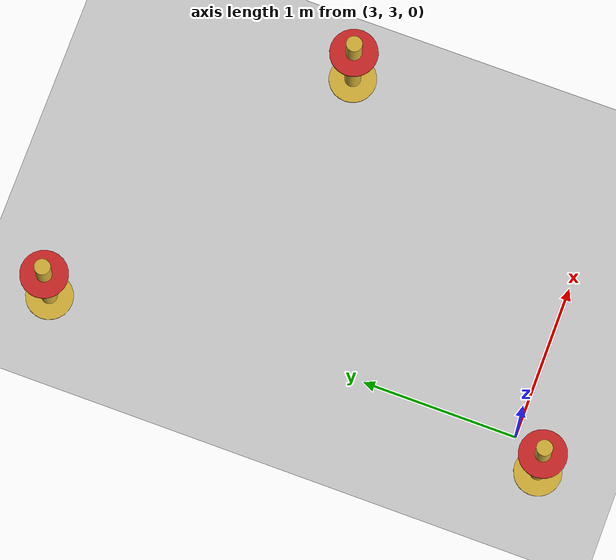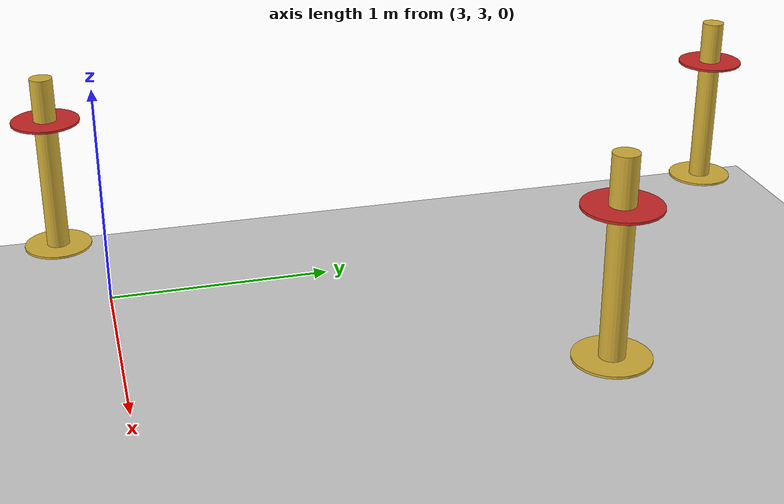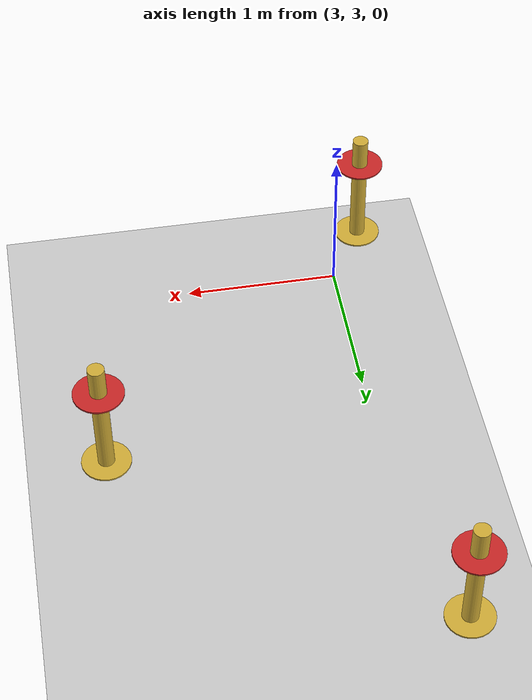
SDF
<sdf version="1.7">
 <world name="default">
  <model name="ground_plane">
   <static>1</static>
   <link name="link">
    <collision name="collision">
     <geometry><plane><normal>0 0 1</normal><size>100 100</size></plane></geometry>
     <surface>
      <contact><collide_bitmask>65535</collide_bitmask></contact>
      <friction><ode><mu>100</mu><mu2>50</mu2></ode></friction>
     </surface>
    </collision>
    <visual name="visual">
     <cast_shadows>0</cast_shadows>
     <geometry><plane><normal>0 0 1</normal><size>100 100</size></plane></geometry>
     <material>
      <script><uri>file://media/materials/scripts/gazebo.material</uri><name>Gazebo/Grey</name></script>
     </material>
    </visual>
   </link>
  </model>
  <model name="pole_tier_1_0">
   <link name="link">
    <inertial>
     <mass>1</mass>
     <inertia><ixx>0.145833</ixx><ixy>0</ixy><ixz>0</ixz><iyy>0.145833</iyy><iyz>0</iyz><izz>0.125</izz></inertia>
    </inertial>
    <pose>0 0 0.4 0 -0 0</pose>
    <visual name="visual">
     <geometry><cylinder><radius>0.05</radius><length>0.8</length></cylinder></geometry>
     <material>
      <script><name>Gazebo/Gray</name><uri>file://media/materials/scripts/gazebo.material</uri></script>
      <shader type="pixel"><normal_map>__default__</normal_map></shader>
      <ambient>0.83 0.686 0.216 1</ambient>
      <diffuse>0.83 0.686 0.216 1</diffuse>
      <specular>0.83 0.686 0.216 1</specular>
      <emissive>0 0 0 1</emissive>
     </material>
    </visual>
    <collision name="collision">
     <geometry><cylinder><radius>0.05</radius><length>0.8</length></cylinder></geometry>
     <surface>
      <friction>
       <ode><mu>1</mu><mu2>1</mu2><fdir1>0 0 0</fdir1><slip1>0</slip1><slip2>0</slip2></ode>
       <torsional>
        <coefficient>1</coefficient>
        <patch_radius>0</patch_radius>
        <surface_radius>0</surface_radius>
        <use_patch_radius>1</use_patch_radius>
        <ode><slip>0</slip></ode>
       </torsional>
      </friction>
      <bounce><restitution_coefficient>0</restitution_coefficient><threshold>1e+06</threshold></bounce>
      <contact>
       <collide_without_contact>0</collide_without_contact>
       <collide_without_contact_bitmask>1</collide_without_contact_bitmask>
       <collide_bitmask>1</collide_bitmask>
       <ode>
        <soft_cfm>0</soft_cfm>
        <soft_erp>0.2</soft_erp>
        <kp>1e+13</kp>
        <kd>1</kd>
        <max_vel>0.01</max_vel>
        <min_depth>0</min_depth>
       </ode>
       <bullet>
        <split_impulse>1</split_impulse>
        <split_impulse_penetration_threshold>-0.01</split_impulse_penetration_threshold>
        <soft_cfm>0</soft_cfm>
        <soft_erp>0.2</soft_erp>
        <kp>1e+13</kp>
        <kd>1</kd>
       </bullet>
      </contact>
     </surface>
    </collision>
   </link>
   <link name="link_clone">
    <inertial>
     <mass>1</mass>
     <inertia><ixx>0.145833</ixx><ixy>0</ixy><ixz>0</ixz><iyy>0.145833</iyy><iyz>0</iyz><izz>0.125</izz></inertia>
    </inertial>
    <visual name="visual">
     <geometry><cylinder><radius>0.15</radius><length>0.01</length></cylinder></geometry>
     <material>
      <script><name>Gazebo/Grey</name><uri>file://media/materials/scripts/gazebo.material</uri></script>
      <shader type="pixel"><normal_map>__default__</normal_map></shader>
      <ambient>0.83 0.686 0.216 1</ambient>
      <diffuse>0.7 0.7 0.7 1</diffuse>
      <specular>0.01 0.01 0.01 1</specular>
      <emissive>0 0 0 1</emissive>
     </material>
    </visual>
    <collision name="collision">
     <geometry><cylinder><radius>0.15</radius><length>0.01</length></cylinder></geometry>
     <surface>
      <friction>
       <ode><mu>1</mu><mu2>1</mu2><fdir1>0 0 0</fdir1><slip1>0</slip1><slip2>0</slip2></ode>
       <torsional>
        <coefficient>1</coefficient>
        <patch_radius>0</patch_radius>
        <surface_radius>0</surface_radius>
        <use_patch_radius>1</use_patch_radius>
        <ode><slip>0</slip></ode>
       </torsional>
      </friction>
      <bounce><restitution_coefficient>0</restitution_coefficient><threshold>1e+06</threshold></bounce>
      <contact>
       <collide_without_contact>0</collide_without_contact>
       <collide_without_contact_bitmask>1</collide_without_contact_bitmask>
       <collide_bitmask>1</collide_bitmask>
       <ode>
        <soft_cfm>0</soft_cfm>
        <soft_erp>0.2</soft_erp>
        <kp>1e+13</kp>
        <kd>1</kd>
        <max_vel>0.01</max_vel>
        <min_depth>0</min_depth>
       </ode>
       <bullet>
        <split_impulse>1</split_impulse>
        <split_impulse_penetration_threshold>-0.01</split_impulse_penetration_threshold>
        <soft_cfm>0</soft_cfm>
        <soft_erp>0.2</soft_erp>
        <kp>1e+13</kp>
        <kd>1</kd>
       </bullet>
      </contact>
     </surface>
    </collision>
   </link>
   <link name="link_clone_clone">
    <inertial>
     <mass>1</mass>
     <inertia><ixx>0.145833</ixx><ixy>0</ixy><ixz>0</ixz><iyy>0.145833</iyy><iyz>0</iyz><izz>0.125</izz></inertia>
    </inertial>
    <pose>0 0 0.6 0 -0 0</pose>
    <visual name="visual">
     <geometry><cylinder><radius>0.15</radius><length>0.01</length></cylinder></geometry>
     <material>
      <script><name>Gazebo/Red</name><uri>file://media/materials/scripts/gazebo.material</uri></script>
      <shader type="pixel"><normal_map>__default__</normal_map></shader>
      <ambient>0.83 0.686 0.216 1</ambient>
      <diffuse>0.7 0.7 0.7 1</diffuse>
      <specular>0.01 0.01 0.01 1</specular>
      <emissive>0 0 0 1</emissive>
     </material>
    </visual>
    <collision name="collision">
     <geometry><cylinder><radius>0.15</radius><length>0.01</length></cylinder></geometry>
     <surface>
      <friction>
       <ode><mu>1</mu><mu2>1</mu2><fdir1>0 0 0</fdir1><slip1>0</slip1><slip2>0</slip2></ode>
       <torsional>
        <coefficient>1</coefficient>
        <patch_radius>0</patch_radius>
        <surface_radius>0</surface_radius>
        <use_patch_radius>1</use_patch_radius>
        <ode><slip>0</slip></ode>
       </torsional>
      </friction>
      <bounce><restitution_coefficient>0</restitution_coefficient><threshold>1e+06</threshold></bounce>
      <contact>
       <collide_without_contact>0</collide_without_contact>
       <collide_without_contact_bitmask>1</collide_without_contact_bitmask>
       <collide_bitmask>1</collide_bitmask>
       <ode>
        <soft_cfm>0</soft_cfm>
        <soft_erp>0.2</soft_erp>
        <kp>1e+13</kp>
        <kd>1</kd>
        <max_vel>0.01</max_vel>
        <min_depth>0</min_depth>
       </ode>
       <bullet>
        <split_impulse>1</split_impulse>
        <split_impulse_penetration_threshold>-0.01</split_impulse_penetration_threshold>
        <soft_cfm>0</soft_cfm>
        <soft_erp>0.2</soft_erp>
        <kp>1e+13</kp>
        <kd>1</kd>
       </bullet>
      </contact>
     </surface>
    </collision>
   </link>
   <joint name="link_JOINT_0" type="fixed">
    <parent>link</parent>
    <child>link_clone</child>
    <physics>
     <ode><limit><cfm>0</cfm><erp>0.2</erp></limit><suspension><cfm>0</cfm><erp>0.2</erp></suspension></ode>
    </physics>
   </joint>
   <joint name="link_JOINT_1" type="fixed">
    <parent>link</parent>
    <child>link_clone_clone</child>
    <physics>
     <ode><limit><cfm>0</cfm><erp>0.2</erp></limit><suspension><cfm>0</cfm><erp>0.2</erp></suspension></ode>
    </physics>
   </joint>
   <static>0</static>
   <pose>2.80206 2.79539 0.205005 1.8e-05 -2.7e-05 -0.021574</pose>
  </model>
  <model name="pole_tier_1_1">
   <link name="link">
    <inertial>
     <mass>1</mass>
     <inertia><ixx>0.145833</ixx><ixy>0</ixy><ixz>0</ixz><iyy>0.145833</iyy><iyz>0</iyz><izz>0.125</izz></inertia>
    </inertial>
    <pose>0 0 0.4 0 -0 0</pose>
    <visual name="visual">
     <geometry><cylinder><radius>0.05</radius><length>0.8</length></cylinder></geometry>
     <material>
      <script><name>Gazebo/Gray</name><uri>file://media/materials/scripts/gazebo.material</uri></script>
      <shader type="pixel"><normal_map>__default__</normal_map></shader>
      <ambient>0.83 0.686 0.216 1</ambient>
      <diffuse>0.83 0.686 0.216 1</diffuse>
      <specular>0.83 0.686 0.216 1</specular>
      <emissive>0 0 0 1</emissive>
     </material>
    </visual>
    <collision name="collision">
     <geometry><cylinder><radius>0.05</radius><length>0.8</length></cylinder></geometry>
     <surface>
      <friction>
       <ode><mu>1</mu><mu2>1</mu2><fdir1>0 0 0</fdir1><slip1>0</slip1><slip2>0</slip2></ode>
       <torsional>
        <coefficient>1</coefficient>
        <patch_radius>0</patch_radius>
        <surface_radius>0</surface_radius>
        <use_patch_radius>1</use_patch_radius>
        <ode><slip>0</slip></ode>
       </torsional>
      </friction>
      <bounce><restitution_coefficient>0</restitution_coefficient><threshold>1e+06</threshold></bounce>
      <contact>
       <collide_without_contact>0</collide_without_contact>
       <collide_without_contact_bitmask>1</collide_without_contact_bitmask>
       <collide_bitmask>1</collide_bitmask>
       <ode>
        <soft_cfm>0</soft_cfm>
        <soft_erp>0.2</soft_erp>
        <kp>1e+13</kp>
        <kd>1</kd>
        <max_vel>0.01</max_vel>
        <min_depth>0</min_depth>
       </ode>
       <bullet>
        <split_impulse>1</split_impulse>
        <split_impulse_penetration_threshold>-0.01</split_impulse_penetration_threshold>
        <soft_cfm>0</soft_cfm>
        <soft_erp>0.2</soft_erp>
        <kp>1e+13</kp>
        <kd>1</kd>
       </bullet>
      </contact>
     </surface>
    </collision>
   </link>
   <link name="link_clone">
    <inertial>
     <mass>1</mass>
     <inertia><ixx>0.145833</ixx><ixy>0</ixy><ixz>0</ixz><iyy>0.145833</iyy><iyz>0</iyz><izz>0.125</izz></inertia>
    </inertial>
    <visual name="visual">
     <geometry><cylinder><radius>0.15</radius><length>0.01</length></cylinder></geometry>
     <material>
      <script><name>Gazebo/Grey</name><uri>file://media/materials/scripts/gazebo.material</uri></script>
      <shader type="pixel"><normal_map>__default__</normal_map></shader>
      <ambient>0.83 0.686 0.216 1</ambient>
      <diffuse>0.7 0.7 0.7 1</diffuse>
      <specular>0.01 0.01 0.01 1</specular>
      <emissive>0 0 0 1</emissive>
     </material>
    </visual>
    <collision name="collision">
     <geometry><cylinder><radius>0.15</radius><length>0.01</length></cylinder></geometry>
     <surface>
      <friction>
       <ode><mu>1</mu><mu2>1</mu2><fdir1>0 0 0</fdir1><slip1>0</slip1><slip2>0</slip2></ode>
       <torsional>
        <coefficient>1</coefficient>
        <patch_radius>0</patch_radius>
        <surface_radius>0</surface_radius>
        <use_patch_radius>1</use_patch_radius>
        <ode><slip>0</slip></ode>
       </torsional>
      </friction>
      <bounce><restitution_coefficient>0</restitution_coefficient><threshold>1e+06</threshold></bounce>
      <contact>
       <collide_without_contact>0</collide_without_contact>
       <collide_without_contact_bitmask>1</collide_without_contact_bitmask>
       <collide_bitmask>1</collide_bitmask>
       <ode>
        <soft_cfm>0</soft_cfm>
        <soft_erp>0.2</soft_erp>
        <kp>1e+13</kp>
        <kd>1</kd>
        <max_vel>0.01</max_vel>
        <min_depth>0</min_depth>
       </ode>
       <bullet>
        <split_impulse>1</split_impulse>
        <split_impulse_penetration_threshold>-0.01</split_impulse_penetration_threshold>
        <soft_cfm>0</soft_cfm>
        <soft_erp>0.2</soft_erp>
        <kp>1e+13</kp>
        <kd>1</kd>
       </bullet>
      </contact>
     </surface>
    </collision>
   </link>
   <link name="link_clone_clone">
    <inertial>
     <mass>1</mass>
     <inertia><ixx>0.145833</ixx><ixy>0</ixy><ixz>0</ixz><iyy>0.145833</iyy><iyz>0</iyz><izz>0.125</izz></inertia>
    </inertial>
    <pose>0 0 0.6 0 -0 0</pose>
    <visual name="visual">
     <geometry><cylinder><radius>0.15</radius><length>0.01</length></cylinder></geometry>
     <material>
      <script><name>Gazebo/Red</name><uri>file://media/materials/scripts/gazebo.material</uri></script>
      <shader type="pixel"><normal_map>__default__</normal_map></shader>
      <ambient>0.83 0.686 0.216 1</ambient>
      <diffuse>0.7 0.7 0.7 1</diffuse>
      <specular>0.01 0.01 0.01 1</specular>
      <emissive>0 0 0 1</emissive>
     </material>
    </visual>
    <collision name="collision">
     <geometry><cylinder><radius>0.15</radius><length>0.01</length></cylinder></geometry>
     <surface>
      <friction>
       <ode><mu>1</mu><mu2>1</mu2><fdir1>0 0 0</fdir1><slip1>0</slip1><slip2>0</slip2></ode>
       <torsional>
        <coefficient>1</coefficient>
        <patch_radius>0</patch_radius>
        <surface_radius>0</surface_radius>
        <use_patch_radius>1</use_patch_radius>
        <ode><slip>0</slip></ode>
       </torsional>
      </friction>
      <bounce><restitution_coefficient>0</restitution_coefficient><threshold>1e+06</threshold></bounce>
      <contact>
       <collide_without_contact>0</collide_without_contact>
       <collide_without_contact_bitmask>1</collide_without_contact_bitmask>
       <collide_bitmask>1</collide_bitmask>
       <ode>
        <soft_cfm>0</soft_cfm>
        <soft_erp>0.2</soft_erp>
        <kp>1e+13</kp>
        <kd>1</kd>
        <max_vel>0.01</max_vel>
        <min_depth>0</min_depth>
       </ode>
       <bullet>
        <split_impulse>1</split_impulse>
        <split_impulse_penetration_threshold>-0.01</split_impulse_penetration_threshold>
        <soft_cfm>0</soft_cfm>
        <soft_erp>0.2</soft_erp>
        <kp>1e+13</kp>
        <kd>1</kd>
       </bullet>
      </contact>
     </surface>
    </collision>
   </link>
   <joint name="link_JOINT_0" type="fixed">
    <parent>link</parent>
    <child>link_clone</child>
    <physics>
     <ode><limit><cfm>0</cfm><erp>0.2</erp></limit><suspension><cfm>0</cfm><erp>0.2</erp></suspension></ode>
    </physics>
   </joint>
   <joint name="link_JOINT_1" type="fixed">
    <parent>link</parent>
    <child>link_clone_clone</child>
    <physics>
     <ode><limit><cfm>0</cfm><erp>0.2</erp></limit><suspension><cfm>0</cfm><erp>0.2</erp></suspension></ode>
    </physics>
   </joint>
   <static>0</static>
   <pose>2.80091 5.99741 0.205006 1.7e-05 -3.6e-05 -0.008457</pose>
  </model>
  <model name="pole_tier_1_8">
   <link name="link">
    <inertial>
     <mass>1</mass>
     <inertia><ixx>0.145833</ixx><ixy>0</ixy><ixz>0</ixz><iyy>0.145833</iyy><iyz>0</iyz><izz>0.125</izz></inertia>
    </inertial>
    <pose>0 0 0.4 0 -0 0</pose>
    <visual name="visual">
     <geometry><cylinder><radius>0.05</radius><length>0.8</length></cylinder></geometry>
     <material>
      <script><name>Gazebo/Gray</name><uri>file://media/materials/scripts/gazebo.material</uri></script>
      <shader type="pixel"><normal_map>__default__</normal_map></shader>
      <ambient>0.83 0.686 0.216 1</ambient>
      <diffuse>0.83 0.686 0.216 1</diffuse>
      <specular>0.83 0.686 0.216 1</specular>
      <emissive>0 0 0 1</emissive>
     </material>
    </visual>
    <collision name="collision">
     <geometry><cylinder><radius>0.05</radius><length>0.8</length></cylinder></geometry>
     <surface>
      <friction>
       <ode><mu>1</mu><mu2>1</mu2><fdir1>0 0 0</fdir1><slip1>0</slip1><slip2>0</slip2></ode>
       <torsional>
        <coefficient>1</coefficient>
        <patch_radius>0</patch_radius>
        <surface_radius>0</surface_radius>
        <use_patch_radius>1</use_patch_radius>
        <ode><slip>0</slip></ode>
       </torsional>
      </friction>
      <bounce><restitution_coefficient>0</restitution_coefficient><threshold>1e+06</threshold></bounce>
      <contact>
       <collide_without_contact>0</collide_without_contact>
       <collide_without_contact_bitmask>1</collide_without_contact_bitmask>
       <collide_bitmask>1</collide_bitmask>
       <ode>
        <soft_cfm>0</soft_cfm>
        <soft_erp>0.2</soft_erp>
        <kp>1e+13</kp>
        <kd>1</kd>
        <max_vel>0.01</max_vel>
        <min_depth>0</min_depth>
       </ode>
       <bullet>
        <split_impulse>1</split_impulse>
        <split_impulse_penetration_threshold>-0.01</split_impulse_penetration_threshold>
        <soft_cfm>0</soft_cfm>
        <soft_erp>0.2</soft_erp>
        <kp>1e+13</kp>
        <kd>1</kd>
       </bullet>
      </contact>
     </surface>
    </collision>
   </link>
   <link name="link_clone">
    <inertial>
     <mass>1</mass>
     <inertia><ixx>0.145833</ixx><ixy>0</ixy><ixz>0</ixz><iyy>0.145833</iyy><iyz>0</iyz><izz>0.125</izz></inertia>
    </inertial>
    <visual name="visual">
     <geometry><cylinder><radius>0.15</radius><length>0.01</length></cylinder></geometry>
     <material>
      <script><name>Gazebo/Grey</name><uri>file://media/materials/scripts/gazebo.material</uri></script>
      <shader type="pixel"><normal_map>__default__</normal_map></shader>
      <ambient>0.83 0.686 0.216 1</ambient>
      <diffuse>0.7 0.7 0.7 1</diffuse>
      <specular>0.01 0.01 0.01 1</specular>
      <emissive>0 0 0 1</emissive>
     </material>
    </visual>
    <collision name="collision">
     <geometry><cylinder><radius>0.15</radius><length>0.01</length></cylinder></geometry>
     <surface>
      <friction>
       <ode><mu>1</mu><mu2>1</mu2><fdir1>0 0 0</fdir1><slip1>0</slip1><slip2>0</slip2></ode>
       <torsional>
        <coefficient>1</coefficient>
        <patch_radius>0</patch_radius>
        <surface_radius>0</surface_radius>
        <use_patch_radius>1</use_patch_radius>
        <ode><slip>0</slip></ode>
       </torsional>
      </friction>
      <bounce><restitution_coefficient>0</restitution_coefficient><threshold>1e+06</threshold></bounce>
      <contact>
       <collide_without_contact>0</collide_without_contact>
       <collide_without_contact_bitmask>1</collide_without_contact_bitmask>
       <collide_bitmask>1</collide_bitmask>
       <ode>
        <soft_cfm>0</soft_cfm>
        <soft_erp>0.2</soft_erp>
        <kp>1e+13</kp>
        <kd>1</kd>
        <max_vel>0.01</max_vel>
        <min_depth>0</min_depth>
       </ode>
       <bullet>
        <split_impulse>1</split_impulse>
        <split_impulse_penetration_threshold>-0.01</split_impulse_penetration_threshold>
        <soft_cfm>0</soft_cfm>
        <soft_erp>0.2</soft_erp>
        <kp>1e+13</kp>
        <kd>1</kd>
       </bullet>
      </contact>
     </surface>
    </collision>
   </link>
   <link name="link_clone_clone">
    <inertial>
     <mass>1</mass>
     <inertia><ixx>0.145833</ixx><ixy>0</ixy><ixz>0</ixz><iyy>0.145833</iyy><iyz>0</iyz><izz>0.125</izz></inertia>
    </inertial>
    <pose>0 0 0.6 0 -0 0</pose>
    <visual name="visual">
     <geometry><cylinder><radius>0.15</radius><length>0.01</length></cylinder></geometry>
     <material>
      <script><name>Gazebo/Red</name><uri>file://media/materials/scripts/gazebo.material</uri></script>
      <shader type="pixel"><normal_map>__default__</normal_map></shader>
      <ambient>0.83 0.686 0.216 1</ambient>
      <diffuse>0.7 0.7 0.7 1</diffuse>
      <specular>0.01 0.01 0.01 1</specular>
      <emissive>0 0 0 1</emissive>
     </material>
    </visual>
    <collision name="collision">
     <geometry><cylinder><radius>0.15</radius><length>0.01</length></cylinder></geometry>
     <surface>
      <friction>
       <ode><mu>1</mu><mu2>1</mu2><fdir1>0 0 0</fdir1><slip1>0</slip1><slip2>0</slip2></ode>
       <torsional>
        <coefficient>1</coefficient>
        <patch_radius>0</patch_radius>
        <surface_radius>0</surface_radius>
        <use_patch_radius>1</use_patch_radius>
        <ode><slip>0</slip></ode>
       </torsional>
      </friction>
      <bounce><restitution_coefficient>0</restitution_coefficient><threshold>1e+06</threshold></bounce>
      <contact>
       <collide_without_contact>0</collide_without_contact>
       <collide_without_contact_bitmask>1</collide_without_contact_bitmask>
       <collide_bitmask>1</collide_bitmask>
       <ode>
        <soft_cfm>0</soft_cfm>
        <soft_erp>0.2</soft_erp>
        <kp>1e+13</kp>
        <kd>1</kd>
        <max_vel>0.01</max_vel>
        <min_depth>0</min_depth>
       </ode>
       <bullet>
        <split_impulse>1</split_impulse>
        <split_impulse_penetration_threshold>-0.01</split_impulse_penetration_threshold>
        <soft_cfm>0</soft_cfm>
        <soft_erp>0.2</soft_erp>
        <kp>1e+13</kp>
        <kd>1</kd>
       </bullet>
      </contact>
     </surface>
    </collision>
   </link>
   <joint name="link_JOINT_0" type="fixed">
    <parent>link</parent>
    <child>link_clone</child>
    <physics>
     <ode><limit><cfm>0</cfm><erp>0.2</erp></limit><suspension><cfm>0</cfm><erp>0.2</erp></suspension></ode>
    </physics>
   </joint>
   <joint name="link_JOINT_1" type="fixed">
    <parent>link</parent>
    <child>link_clone_clone</child>
    <physics>
     <ode><limit><cfm>0</cfm><erp>0.2</erp></limit><suspension><cfm>0</cfm><erp>0.2</erp></suspension></ode>
    </physics>
   </joint>
   <static>0</static>
   <pose>4.70147 4.69798 0.404995 1.7e-05 -2.6e-05 -0.014119</pose>
  </model>
 </world>
</sdf>
